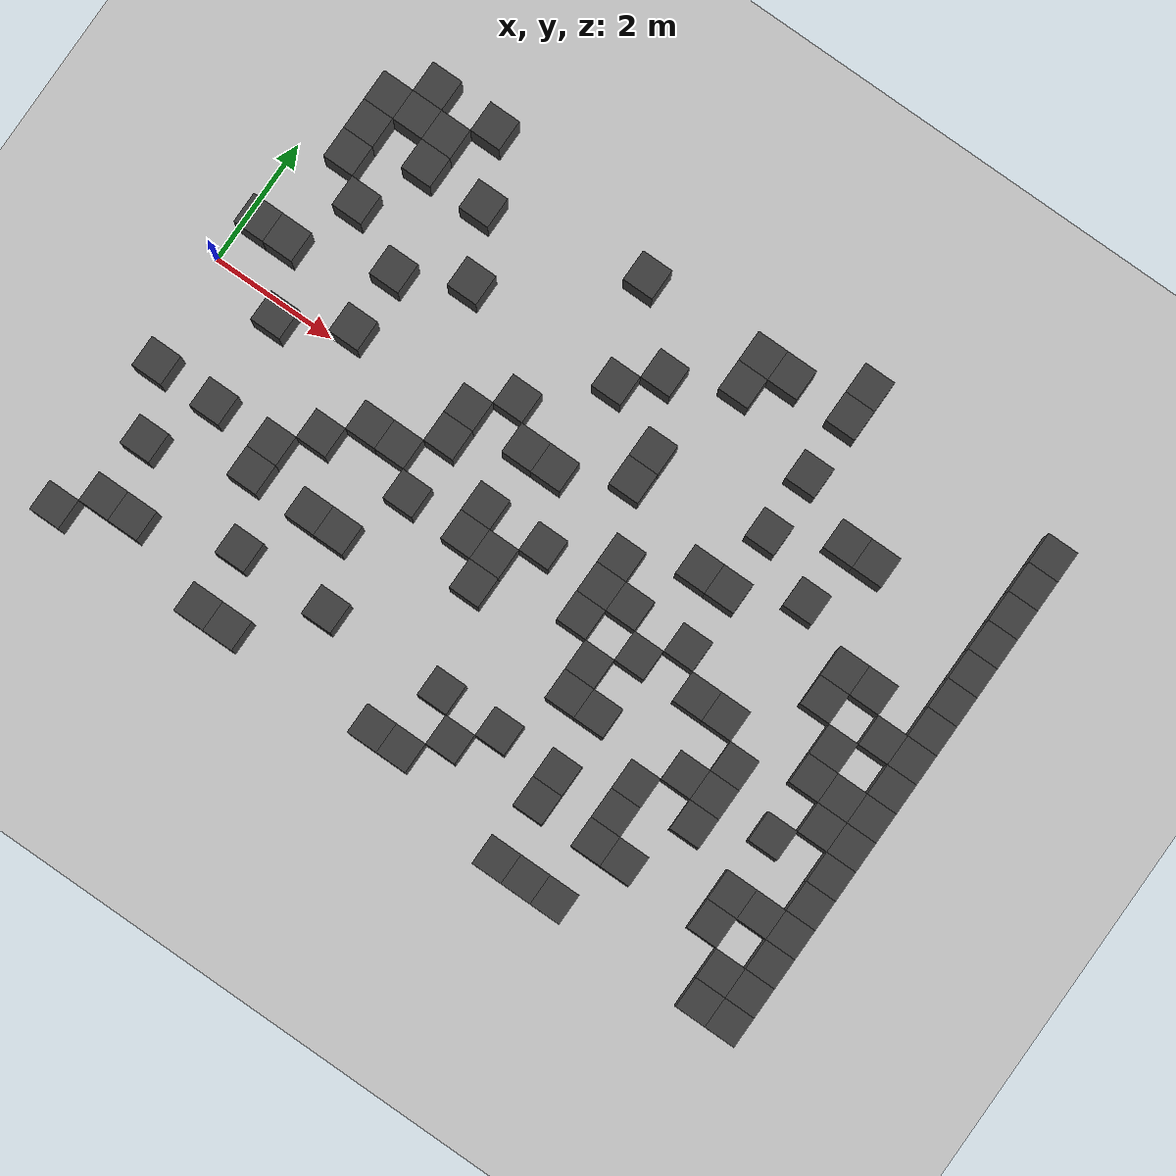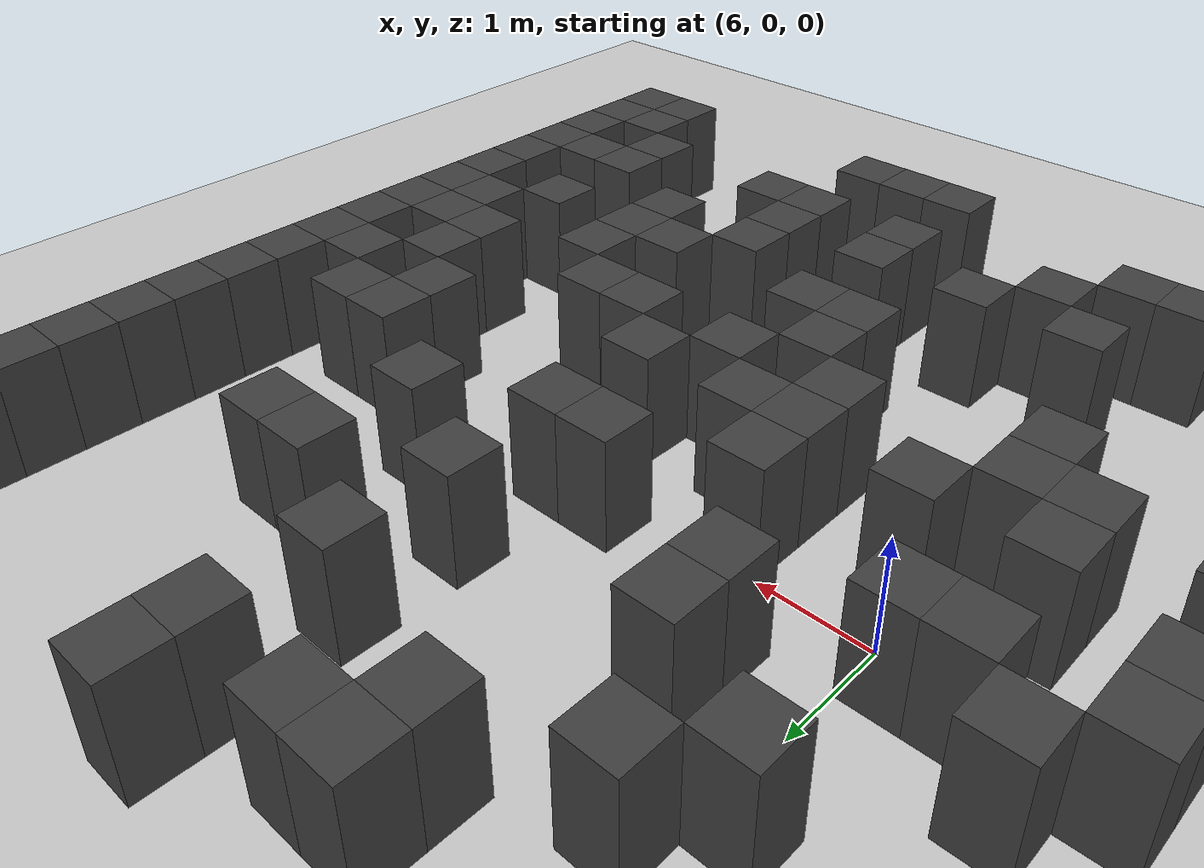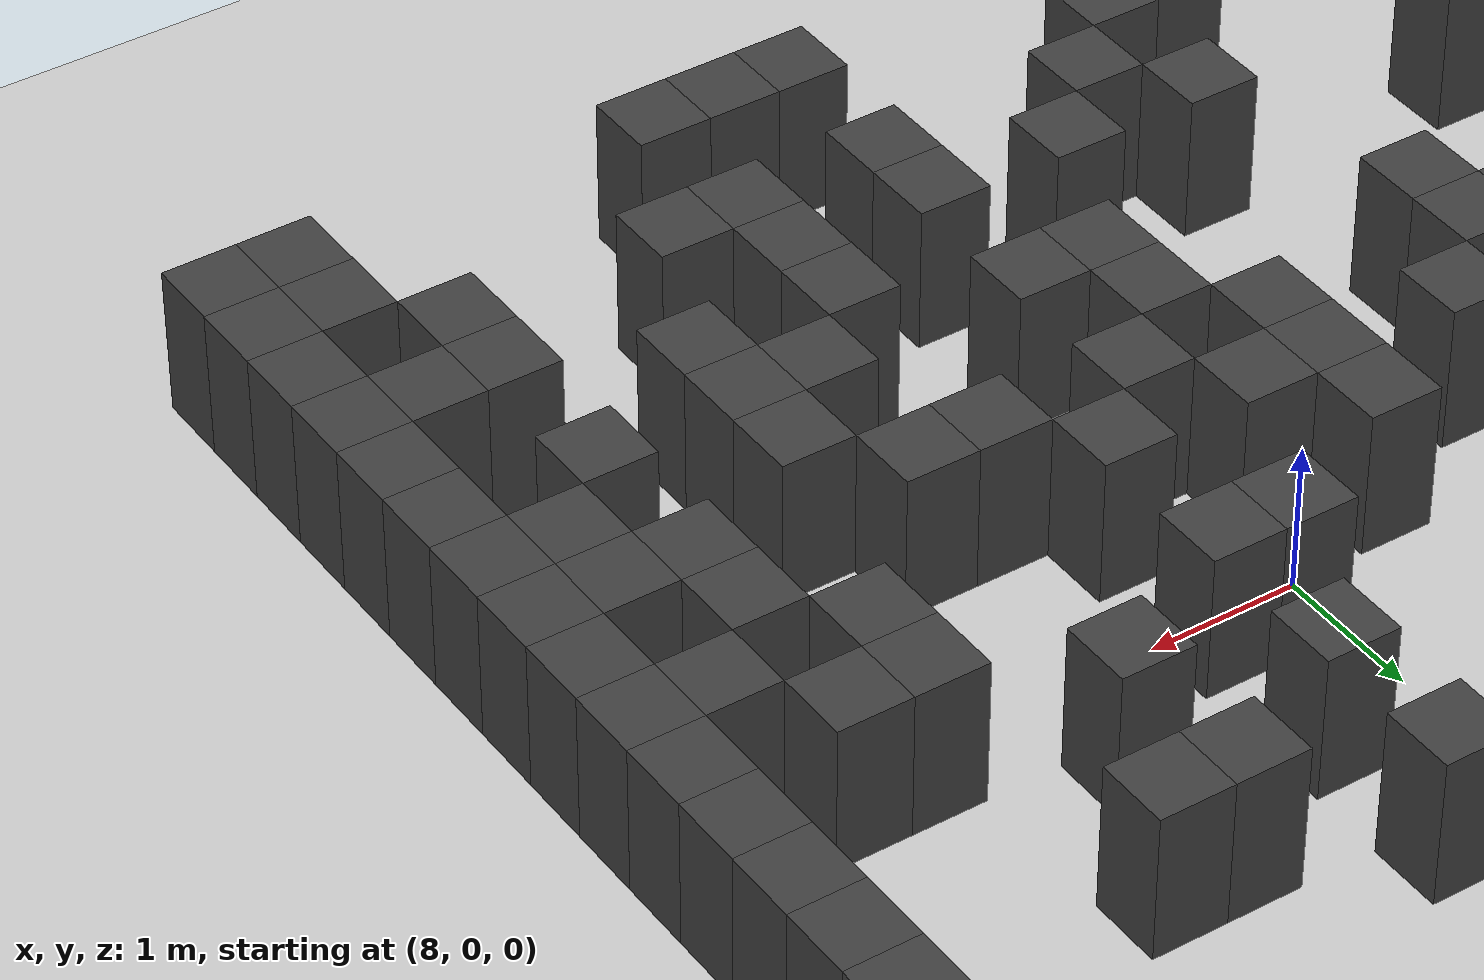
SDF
<sdf version="1.7">
 <world name="map_4822">
  <model name="ground_plane">
   <static>true</static>
   <link name="link">
    <collision name="collision">
     <geometry><plane><normal>0 0 1</normal><size>200 200</size></plane></geometry>
    </collision>
    <visual name="visual">
     <geometry><plane><normal>0 0 1</normal><size>200 200</size></plane></geometry>
     <material><ambient>0.8 0.8 0.8 1</ambient><diffuse>0.8 0.8 0.8 1</diffuse></material>
    </visual>
   </link>
  </model>
  <model name="maze_environment">
   <static>true</static>
   <link name="wall_263">
    <pose>1.250 3.750 0.500 0 0 0</pose>
    <collision name="col"><geometry><box><size>0.5 0.5 1.0</size></box></geometry></collision>
    <visual name="vis">
     <geometry><box><size>0.5 0.5 1.0</size></box></geometry>
     <material><ambient>0.15 0.15 0.15 1</ambient><diffuse>0.25 0.25 0.25 1</diffuse></material>
    </visual>
   </link>
   <link name="wall_264">
    <pose>2.250 3.750 0.500 0 0 0</pose>
    <collision name="col"><geometry><box><size>0.5 0.5 1.0</size></box></geometry></collision>
    <visual name="vis">
     <geometry><box><size>0.5 0.5 1.0</size></box></geometry>
     <material><ambient>0.15 0.15 0.15 1</ambient><diffuse>0.25 0.25 0.25 1</diffuse></material>
    </visual>
   </link>
   <link name="wall_265">
    <pose>8.750 3.750 0.500 0 0 0</pose>
    <collision name="col"><geometry><box><size>0.5 0.5 1.0</size></box></geometry></collision>
    <visual name="vis">
     <geometry><box><size>0.5 0.5 1.0</size></box></geometry>
     <material><ambient>0.15 0.15 0.15 1</ambient><diffuse>0.25 0.25 0.25 1</diffuse></material>
    </visual>
   </link>
   <link name="wall_278">
    <pose>0.750 3.250 0.500 0 0 0</pose>
    <collision name="col"><geometry><box><size>0.5 0.5 1.0</size></box></geometry></collision>
    <visual name="vis">
     <geometry><box><size>0.5 0.5 1.0</size></box></geometry>
     <material><ambient>0.15 0.15 0.15 1</ambient><diffuse>0.25 0.25 0.25 1</diffuse></material>
    </visual>
   </link>
   <link name="wall_279">
    <pose>1.250 3.250 0.500 0 0 0</pose>
    <collision name="col"><geometry><box><size>0.5 0.5 1.0</size></box></geometry></collision>
    <visual name="vis">
     <geometry><box><size>0.5 0.5 1.0</size></box></geometry>
     <material><ambient>0.15 0.15 0.15 1</ambient><diffuse>0.25 0.25 0.25 1</diffuse></material>
    </visual>
   </link>
   <link name="wall_280">
    <pose>1.750 3.250 0.500 0 0 0</pose>
    <collision name="col"><geometry><box><size>0.5 0.5 1.0</size></box></geometry></collision>
    <visual name="vis">
     <geometry><box><size>0.5 0.5 1.0</size></box></geometry>
     <material><ambient>0.15 0.15 0.15 1</ambient><diffuse>0.25 0.25 0.25 1</diffuse></material>
    </visual>
   </link>
   <link name="wall_281">
    <pose>5.250 3.250 0.500 0 0 0</pose>
    <collision name="col"><geometry><box><size>0.5 0.5 1.0</size></box></geometry></collision>
    <visual name="vis">
     <geometry><box><size>0.5 0.5 1.0</size></box></geometry>
     <material><ambient>0.15 0.15 0.15 1</ambient><diffuse>0.25 0.25 0.25 1</diffuse></material>
    </visual>
   </link>
   <link name="wall_282">
    <pose>7.250 3.250 0.500 0 0 0</pose>
    <collision name="col"><geometry><box><size>0.5 0.5 1.0</size></box></geometry></collision>
    <visual name="vis">
     <geometry><box><size>0.5 0.5 1.0</size></box></geometry>
     <material><ambient>0.15 0.15 0.15 1</ambient><diffuse>0.25 0.25 0.25 1</diffuse></material>
    </visual>
   </link>
   <link name="wall_283">
    <pose>7.750 3.250 0.500 0 0 0</pose>
    <collision name="col"><geometry><box><size>0.5 0.5 1.0</size></box></geometry></collision>
    <visual name="vis">
     <geometry><box><size>0.5 0.5 1.0</size></box></geometry>
     <material><ambient>0.15 0.15 0.15 1</ambient><diffuse>0.25 0.25 0.25 1</diffuse></material>
    </visual>
   </link>
   <link name="wall_284">
    <pose>8.750 3.250 0.500 0 0 0</pose>
    <collision name="col"><geometry><box><size>0.5 0.5 1.0</size></box></geometry></collision>
    <visual name="vis">
     <geometry><box><size>0.5 0.5 1.0</size></box></geometry>
     <material><ambient>0.15 0.15 0.15 1</ambient><diffuse>0.25 0.25 0.25 1</diffuse></material>
    </visual>
   </link>
   <link name="wall_285">
    <pose>12.250 3.250 0.500 0 0 0</pose>
    <collision name="col"><geometry><box><size>0.5 0.5 1.0</size></box></geometry></collision>
    <visual name="vis">
     <geometry><box><size>0.5 0.5 1.0</size></box></geometry>
     <material><ambient>0.15 0.15 0.15 1</ambient><diffuse>0.25 0.25 0.25 1</diffuse></material>
    </visual>
   </link>
   <link name="wall_292">
    <pose>0.750 2.750 0.500 0 0 0</pose>
    <collision name="col"><geometry><box><size>0.5 0.5 1.0</size></box></geometry></collision>
    <visual name="vis">
     <geometry><box><size>0.5 0.5 1.0</size></box></geometry>
     <material><ambient>0.15 0.15 0.15 1</ambient><diffuse>0.25 0.25 0.25 1</diffuse></material>
    </visual>
   </link>
   <link name="wall_293">
    <pose>1.750 2.750 0.500 0 0 0</pose>
    <collision name="col"><geometry><box><size>0.5 0.5 1.0</size></box></geometry></collision>
    <visual name="vis">
     <geometry><box><size>0.5 0.5 1.0</size></box></geometry>
     <material><ambient>0.15 0.15 0.15 1</ambient><diffuse>0.25 0.25 0.25 1</diffuse></material>
    </visual>
   </link>
   <link name="wall_294">
    <pose>2.750 2.750 0.500 0 0 0</pose>
    <collision name="col"><geometry><box><size>0.5 0.5 1.0</size></box></geometry></collision>
    <visual name="vis">
     <geometry><box><size>0.5 0.5 1.0</size></box></geometry>
     <material><ambient>0.15 0.15 0.15 1</ambient><diffuse>0.25 0.25 0.25 1</diffuse></material>
    </visual>
   </link>
   <link name="wall_295">
    <pose>7.250 2.750 0.500 0 0 0</pose>
    <collision name="col"><geometry><box><size>0.5 0.5 1.0</size></box></geometry></collision>
    <visual name="vis">
     <geometry><box><size>0.5 0.5 1.0</size></box></geometry>
     <material><ambient>0.15 0.15 0.15 1</ambient><diffuse>0.25 0.25 0.25 1</diffuse></material>
    </visual>
   </link>
   <link name="wall_296">
    <pose>12.250 2.750 0.500 0 0 0</pose>
    <collision name="col"><geometry><box><size>0.5 0.5 1.0</size></box></geometry></collision>
    <visual name="vis">
     <geometry><box><size>0.5 0.5 1.0</size></box></geometry>
     <material><ambient>0.15 0.15 0.15 1</ambient><diffuse>0.25 0.25 0.25 1</diffuse></material>
    </visual>
   </link>
   <link name="wall_301">
    <pose>0.750 2.250 0.500 0 0 0</pose>
    <collision name="col"><geometry><box><size>0.5 0.5 1.0</size></box></geometry></collision>
    <visual name="vis">
     <geometry><box><size>0.5 0.5 1.0</size></box></geometry>
     <material><ambient>0.15 0.15 0.15 1</ambient><diffuse>0.25 0.25 0.25 1</diffuse></material>
    </visual>
   </link>
   <link name="wall_302">
    <pose>6.250 2.250 0.500 0 0 0</pose>
    <collision name="col"><geometry><box><size>0.5 0.5 1.0</size></box></geometry></collision>
    <visual name="vis">
     <geometry><box><size>0.5 0.5 1.0</size></box></geometry>
     <material><ambient>0.15 0.15 0.15 1</ambient><diffuse>0.25 0.25 0.25 1</diffuse></material>
    </visual>
   </link>
   <link name="wall_303">
    <pose>8.750 2.250 0.500 0 0 0</pose>
    <collision name="col"><geometry><box><size>0.5 0.5 1.0</size></box></geometry></collision>
    <visual name="vis">
     <geometry><box><size>0.5 0.5 1.0</size></box></geometry>
     <material><ambient>0.15 0.15 0.15 1</ambient><diffuse>0.25 0.25 0.25 1</diffuse></material>
    </visual>
   </link>
   <link name="wall_304">
    <pose>12.250 2.250 0.500 0 0 0</pose>
    <collision name="col"><geometry><box><size>0.5 0.5 1.0</size></box></geometry></collision>
    <visual name="vis">
     <geometry><box><size>0.5 0.5 1.0</size></box></geometry>
     <material><ambient>0.15 0.15 0.15 1</ambient><diffuse>0.25 0.25 0.25 1</diffuse></material>
    </visual>
   </link>
   <link name="wall_308">
    <pose>1.250 1.750 0.500 0 0 0</pose>
    <collision name="col"><geometry><box><size>0.5 0.5 1.0</size></box></geometry></collision>
    <visual name="vis">
     <geometry><box><size>0.5 0.5 1.0</size></box></geometry>
     <material><ambient>0.15 0.15 0.15 1</ambient><diffuse>0.25 0.25 0.25 1</diffuse></material>
    </visual>
   </link>
   <link name="wall_309">
    <pose>3.250 1.750 0.500 0 0 0</pose>
    <collision name="col"><geometry><box><size>0.5 0.5 1.0</size></box></geometry></collision>
    <visual name="vis">
     <geometry><box><size>0.5 0.5 1.0</size></box></geometry>
     <material><ambient>0.15 0.15 0.15 1</ambient><diffuse>0.25 0.25 0.25 1</diffuse></material>
    </visual>
   </link>
   <link name="wall_310">
    <pose>5.750 1.750 0.500 0 0 0</pose>
    <collision name="col"><geometry><box><size>0.5 0.5 1.0</size></box></geometry></collision>
    <visual name="vis">
     <geometry><box><size>0.5 0.5 1.0</size></box></geometry>
     <material><ambient>0.15 0.15 0.15 1</ambient><diffuse>0.25 0.25 0.25 1</diffuse></material>
    </visual>
   </link>
   <link name="wall_311">
    <pose>9.750 1.750 0.500 0 0 0</pose>
    <collision name="col"><geometry><box><size>0.5 0.5 1.0</size></box></geometry></collision>
    <visual name="vis">
     <geometry><box><size>0.5 0.5 1.0</size></box></geometry>
     <material><ambient>0.15 0.15 0.15 1</ambient><diffuse>0.25 0.25 0.25 1</diffuse></material>
    </visual>
   </link>
   <link name="wall_312">
    <pose>10.250 1.750 0.500 0 0 0</pose>
    <collision name="col"><geometry><box><size>0.5 0.5 1.0</size></box></geometry></collision>
    <visual name="vis">
     <geometry><box><size>0.5 0.5 1.0</size></box></geometry>
     <material><ambient>0.15 0.15 0.15 1</ambient><diffuse>0.25 0.25 0.25 1</diffuse></material>
    </visual>
   </link>
   <link name="wall_313">
    <pose>12.250 1.750 0.500 0 0 0</pose>
    <collision name="col"><geometry><box><size>0.5 0.5 1.0</size></box></geometry></collision>
    <visual name="vis">
     <geometry><box><size>0.5 0.5 1.0</size></box></geometry>
     <material><ambient>0.15 0.15 0.15 1</ambient><diffuse>0.25 0.25 0.25 1</diffuse></material>
    </visual>
   </link>
   <link name="wall_320">
    <pose>2.250 1.250 0.500 0 0 0</pose>
    <collision name="col"><geometry><box><size>0.5 0.5 1.0</size></box></geometry></collision>
    <visual name="vis">
     <geometry><box><size>0.5 0.5 1.0</size></box></geometry>
     <material><ambient>0.15 0.15 0.15 1</ambient><diffuse>0.25 0.25 0.25 1</diffuse></material>
    </visual>
   </link>
   <link name="wall_321">
    <pose>6.750 1.250 0.500 0 0 0</pose>
    <collision name="col"><geometry><box><size>0.5 0.5 1.0</size></box></geometry></collision>
    <visual name="vis">
     <geometry><box><size>0.5 0.5 1.0</size></box></geometry>
     <material><ambient>0.15 0.15 0.15 1</ambient><diffuse>0.25 0.25 0.25 1</diffuse></material>
    </visual>
   </link>
   <link name="wall_322">
    <pose>8.750 1.250 0.500 0 0 0</pose>
    <collision name="col"><geometry><box><size>0.5 0.5 1.0</size></box></geometry></collision>
    <visual name="vis">
     <geometry><box><size>0.5 0.5 1.0</size></box></geometry>
     <material><ambient>0.15 0.15 0.15 1</ambient><diffuse>0.25 0.25 0.25 1</diffuse></material>
    </visual>
   </link>
   <link name="wall_323">
    <pose>12.250 1.250 0.500 0 0 0</pose>
    <collision name="col"><geometry><box><size>0.5 0.5 1.0</size></box></geometry></collision>
    <visual name="vis">
     <geometry><box><size>0.5 0.5 1.0</size></box></geometry>
     <material><ambient>0.15 0.15 0.15 1</ambient><diffuse>0.25 0.25 0.25 1</diffuse></material>
    </visual>
   </link>
   <link name="wall_331">
    <pose>0.250 0.750 0.500 0 0 0</pose>
    <collision name="col"><geometry><box><size>0.5 0.5 1.0</size></box></geometry></collision>
    <visual name="vis">
     <geometry><box><size>0.5 0.5 1.0</size></box></geometry>
     <material><ambient>0.15 0.15 0.15 1</ambient><diffuse>0.25 0.25 0.25 1</diffuse></material>
    </visual>
   </link>
   <link name="wall_332">
    <pose>0.750 0.750 0.500 0 0 0</pose>
    <collision name="col"><geometry><box><size>0.5 0.5 1.0</size></box></geometry></collision>
    <visual name="vis">
     <geometry><box><size>0.5 0.5 1.0</size></box></geometry>
     <material><ambient>0.15 0.15 0.15 1</ambient><diffuse>0.25 0.25 0.25 1</diffuse></material>
    </visual>
   </link>
   <link name="wall_333">
    <pose>4.750 0.750 0.500 0 0 0</pose>
    <collision name="col"><geometry><box><size>0.5 0.5 1.0</size></box></geometry></collision>
    <visual name="vis">
     <geometry><box><size>0.5 0.5 1.0</size></box></geometry>
     <material><ambient>0.15 0.15 0.15 1</ambient><diffuse>0.25 0.25 0.25 1</diffuse></material>
    </visual>
   </link>
   <link name="wall_334">
    <pose>6.750 0.750 0.500 0 0 0</pose>
    <collision name="col"><geometry><box><size>0.5 0.5 1.0</size></box></geometry></collision>
    <visual name="vis">
     <geometry><box><size>0.5 0.5 1.0</size></box></geometry>
     <material><ambient>0.15 0.15 0.15 1</ambient><diffuse>0.25 0.25 0.25 1</diffuse></material>
    </visual>
   </link>
   <link name="wall_335">
    <pose>9.750 0.750 0.500 0 0 0</pose>
    <collision name="col"><geometry><box><size>0.5 0.5 1.0</size></box></geometry></collision>
    <visual name="vis">
     <geometry><box><size>0.5 0.5 1.0</size></box></geometry>
     <material><ambient>0.15 0.15 0.15 1</ambient><diffuse>0.25 0.25 0.25 1</diffuse></material>
    </visual>
   </link>
   <link name="wall_336">
    <pose>12.250 0.750 0.500 0 0 0</pose>
    <collision name="col"><geometry><box><size>0.5 0.5 1.0</size></box></geometry></collision>
    <visual name="vis">
     <geometry><box><size>0.5 0.5 1.0</size></box></geometry>
     <material><ambient>0.15 0.15 0.15 1</ambient><diffuse>0.25 0.25 0.25 1</diffuse></material>
    </visual>
   </link>
   <link name="wall_342">
    <pose>2.250 0.250 0.500 0 0 0</pose>
    <collision name="col"><geometry><box><size>0.5 0.5 1.0</size></box></geometry></collision>
    <visual name="vis">
     <geometry><box><size>0.5 0.5 1.0</size></box></geometry>
     <material><ambient>0.15 0.15 0.15 1</ambient><diffuse>0.25 0.25 0.25 1</diffuse></material>
    </visual>
   </link>
   <link name="wall_343">
    <pose>4.250 0.250 0.500 0 0 0</pose>
    <collision name="col"><geometry><box><size>0.5 0.5 1.0</size></box></geometry></collision>
    <visual name="vis">
     <geometry><box><size>0.5 0.5 1.0</size></box></geometry>
     <material><ambient>0.15 0.15 0.15 1</ambient><diffuse>0.25 0.25 0.25 1</diffuse></material>
    </visual>
   </link>
   <link name="wall_344">
    <pose>5.250 0.250 0.500 0 0 0</pose>
    <collision name="col"><geometry><box><size>0.5 0.5 1.0</size></box></geometry></collision>
    <visual name="vis">
     <geometry><box><size>0.5 0.5 1.0</size></box></geometry>
     <material><ambient>0.15 0.15 0.15 1</ambient><diffuse>0.25 0.25 0.25 1</diffuse></material>
    </visual>
   </link>
   <link name="wall_345">
    <pose>5.750 0.250 0.500 0 0 0</pose>
    <collision name="col"><geometry><box><size>0.5 0.5 1.0</size></box></geometry></collision>
    <visual name="vis">
     <geometry><box><size>0.5 0.5 1.0</size></box></geometry>
     <material><ambient>0.15 0.15 0.15 1</ambient><diffuse>0.25 0.25 0.25 1</diffuse></material>
    </visual>
   </link>
   <link name="wall_346">
    <pose>8.250 0.250 0.500 0 0 0</pose>
    <collision name="col"><geometry><box><size>0.5 0.5 1.0</size></box></geometry></collision>
    <visual name="vis">
     <geometry><box><size>0.5 0.5 1.0</size></box></geometry>
     <material><ambient>0.15 0.15 0.15 1</ambient><diffuse>0.25 0.25 0.25 1</diffuse></material>
    </visual>
   </link>
   <link name="wall_347">
    <pose>8.750 0.250 0.500 0 0 0</pose>
    <collision name="col"><geometry><box><size>0.5 0.5 1.0</size></box></geometry></collision>
    <visual name="vis">
     <geometry><box><size>0.5 0.5 1.0</size></box></geometry>
     <material><ambient>0.15 0.15 0.15 1</ambient><diffuse>0.25 0.25 0.25 1</diffuse></material>
    </visual>
   </link>
   <link name="wall_348">
    <pose>10.750 0.250 0.500 0 0 0</pose>
    <collision name="col"><geometry><box><size>0.5 0.5 1.0</size></box></geometry></collision>
    <visual name="vis">
     <geometry><box><size>0.5 0.5 1.0</size></box></geometry>
     <material><ambient>0.15 0.15 0.15 1</ambient><diffuse>0.25 0.25 0.25 1</diffuse></material>
    </visual>
   </link>
   <link name="wall_349">
    <pose>11.250 0.250 0.500 0 0 0</pose>
    <collision name="col"><geometry><box><size>0.5 0.5 1.0</size></box></geometry></collision>
    <visual name="vis">
     <geometry><box><size>0.5 0.5 1.0</size></box></geometry>
     <material><ambient>0.15 0.15 0.15 1</ambient><diffuse>0.25 0.25 0.25 1</diffuse></material>
    </visual>
   </link>
   <link name="wall_350">
    <pose>12.250 0.250 0.500 0 0 0</pose>
    <collision name="col"><geometry><box><size>0.5 0.5 1.0</size></box></geometry></collision>
    <visual name="vis">
     <geometry><box><size>0.5 0.5 1.0</size></box></geometry>
     <material><ambient>0.15 0.15 0.15 1</ambient><diffuse>0.25 0.25 0.25 1</diffuse></material>
    </visual>
   </link>
   <link name="wall_357">
    <pose>1.250 -0.250 0.500 0 0 0</pose>
    <collision name="col"><geometry><box><size>0.5 0.5 1.0</size></box></geometry></collision>
    <visual name="vis">
     <geometry><box><size>0.5 0.5 1.0</size></box></geometry>
     <material><ambient>0.15 0.15 0.15 1</ambient><diffuse>0.25 0.25 0.25 1</diffuse></material>
    </visual>
   </link>
   <link name="wall_358">
    <pose>4.250 -0.250 0.500 0 0 0</pose>
    <collision name="col"><geometry><box><size>0.5 0.5 1.0</size></box></geometry></collision>
    <visual name="vis">
     <geometry><box><size>0.5 0.5 1.0</size></box></geometry>
     <material><ambient>0.15 0.15 0.15 1</ambient><diffuse>0.25 0.25 0.25 1</diffuse></material>
    </visual>
   </link>
   <link name="wall_359">
    <pose>7.250 -0.250 0.500 0 0 0</pose>
    <collision name="col"><geometry><box><size>0.5 0.5 1.0</size></box></geometry></collision>
    <visual name="vis">
     <geometry><box><size>0.5 0.5 1.0</size></box></geometry>
     <material><ambient>0.15 0.15 0.15 1</ambient><diffuse>0.25 0.25 0.25 1</diffuse></material>
    </visual>
   </link>
   <link name="wall_360">
    <pose>10.750 -0.250 0.500 0 0 0</pose>
    <collision name="col"><geometry><box><size>0.5 0.5 1.0</size></box></geometry></collision>
    <visual name="vis">
     <geometry><box><size>0.5 0.5 1.0</size></box></geometry>
     <material><ambient>0.15 0.15 0.15 1</ambient><diffuse>0.25 0.25 0.25 1</diffuse></material>
    </visual>
   </link>
   <link name="wall_361">
    <pose>11.750 -0.250 0.500 0 0 0</pose>
    <collision name="col"><geometry><box><size>0.5 0.5 1.0</size></box></geometry></collision>
    <visual name="vis">
     <geometry><box><size>0.5 0.5 1.0</size></box></geometry>
     <material><ambient>0.15 0.15 0.15 1</ambient><diffuse>0.25 0.25 0.25 1</diffuse></material>
    </visual>
   </link>
   <link name="wall_362">
    <pose>12.250 -0.250 0.500 0 0 0</pose>
    <collision name="col"><geometry><box><size>0.5 0.5 1.0</size></box></geometry></collision>
    <visual name="vis">
     <geometry><box><size>0.5 0.5 1.0</size></box></geometry>
     <material><ambient>0.15 0.15 0.15 1</ambient><diffuse>0.25 0.25 0.25 1</diffuse></material>
    </visual>
   </link>
   <link name="wall_368">
    <pose>3.250 -0.750 0.500 0 0 0</pose>
    <collision name="col"><geometry><box><size>0.5 0.5 1.0</size></box></geometry></collision>
    <visual name="vis">
     <geometry><box><size>0.5 0.5 1.0</size></box></geometry>
     <material><ambient>0.15 0.15 0.15 1</ambient><diffuse>0.25 0.25 0.25 1</diffuse></material>
    </visual>
   </link>
   <link name="wall_369">
    <pose>3.750 -0.750 0.500 0 0 0</pose>
    <collision name="col"><geometry><box><size>0.5 0.5 1.0</size></box></geometry></collision>
    <visual name="vis">
     <geometry><box><size>0.5 0.5 1.0</size></box></geometry>
     <material><ambient>0.15 0.15 0.15 1</ambient><diffuse>0.25 0.25 0.25 1</diffuse></material>
    </visual>
   </link>
   <link name="wall_370">
    <pose>5.250 -0.750 0.500 0 0 0</pose>
    <collision name="col"><geometry><box><size>0.5 0.5 1.0</size></box></geometry></collision>
    <visual name="vis">
     <geometry><box><size>0.5 0.5 1.0</size></box></geometry>
     <material><ambient>0.15 0.15 0.15 1</ambient><diffuse>0.25 0.25 0.25 1</diffuse></material>
    </visual>
   </link>
   <link name="wall_371">
    <pose>6.250 -0.750 0.500 0 0 0</pose>
    <collision name="col"><geometry><box><size>0.5 0.5 1.0</size></box></geometry></collision>
    <visual name="vis">
     <geometry><box><size>0.5 0.5 1.0</size></box></geometry>
     <material><ambient>0.15 0.15 0.15 1</ambient><diffuse>0.25 0.25 0.25 1</diffuse></material>
    </visual>
   </link>
   <link name="wall_372">
    <pose>7.250 -0.750 0.500 0 0 0</pose>
    <collision name="col"><geometry><box><size>0.5 0.5 1.0</size></box></geometry></collision>
    <visual name="vis">
     <geometry><box><size>0.5 0.5 1.0</size></box></geometry>
     <material><ambient>0.15 0.15 0.15 1</ambient><diffuse>0.25 0.25 0.25 1</diffuse></material>
    </visual>
   </link>
   <link name="wall_373">
    <pose>7.750 -0.750 0.500 0 0 0</pose>
    <collision name="col"><geometry><box><size>0.5 0.5 1.0</size></box></geometry></collision>
    <visual name="vis">
     <geometry><box><size>0.5 0.5 1.0</size></box></geometry>
     <material><ambient>0.15 0.15 0.15 1</ambient><diffuse>0.25 0.25 0.25 1</diffuse></material>
    </visual>
   </link>
   <link name="wall_374">
    <pose>8.750 -0.750 0.500 0 0 0</pose>
    <collision name="col"><geometry><box><size>0.5 0.5 1.0</size></box></geometry></collision>
    <visual name="vis">
     <geometry><box><size>0.5 0.5 1.0</size></box></geometry>
     <material><ambient>0.15 0.15 0.15 1</ambient><diffuse>0.25 0.25 0.25 1</diffuse></material>
    </visual>
   </link>
   <link name="wall_375">
    <pose>11.250 -0.750 0.500 0 0 0</pose>
    <collision name="col"><geometry><box><size>0.5 0.5 1.0</size></box></geometry></collision>
    <visual name="vis">
     <geometry><box><size>0.5 0.5 1.0</size></box></geometry>
     <material><ambient>0.15 0.15 0.15 1</ambient><diffuse>0.25 0.25 0.25 1</diffuse></material>
    </visual>
   </link>
   <link name="wall_376">
    <pose>12.250 -0.750 0.500 0 0 0</pose>
    <collision name="col"><geometry><box><size>0.5 0.5 1.0</size></box></geometry></collision>
    <visual name="vis">
     <geometry><box><size>0.5 0.5 1.0</size></box></geometry>
     <material><ambient>0.15 0.15 0.15 1</ambient><diffuse>0.25 0.25 0.25 1</diffuse></material>
    </visual>
   </link>
   <link name="wall_383">
    <pose>2.750 -1.250 0.500 0 0 0</pose>
    <collision name="col"><geometry><box><size>0.5 0.5 1.0</size></box></geometry></collision>
    <visual name="vis">
     <geometry><box><size>0.5 0.5 1.0</size></box></geometry>
     <material><ambient>0.15 0.15 0.15 1</ambient><diffuse>0.25 0.25 0.25 1</diffuse></material>
    </visual>
   </link>
   <link name="wall_384">
    <pose>4.250 -1.250 0.500 0 0 0</pose>
    <collision name="col"><geometry><box><size>0.5 0.5 1.0</size></box></geometry></collision>
    <visual name="vis">
     <geometry><box><size>0.5 0.5 1.0</size></box></geometry>
     <material><ambient>0.15 0.15 0.15 1</ambient><diffuse>0.25 0.25 0.25 1</diffuse></material>
    </visual>
   </link>
   <link name="wall_385">
    <pose>5.250 -1.250 0.500 0 0 0</pose>
    <collision name="col"><geometry><box><size>0.5 0.5 1.0</size></box></geometry></collision>
    <visual name="vis">
     <geometry><box><size>0.5 0.5 1.0</size></box></geometry>
     <material><ambient>0.15 0.15 0.15 1</ambient><diffuse>0.25 0.25 0.25 1</diffuse></material>
    </visual>
   </link>
   <link name="wall_386">
    <pose>5.750 -1.250 0.500 0 0 0</pose>
    <collision name="col"><geometry><box><size>0.5 0.5 1.0</size></box></geometry></collision>
    <visual name="vis">
     <geometry><box><size>0.5 0.5 1.0</size></box></geometry>
     <material><ambient>0.15 0.15 0.15 1</ambient><diffuse>0.25 0.25 0.25 1</diffuse></material>
    </visual>
   </link>
   <link name="wall_387">
    <pose>7.250 -1.250 0.500 0 0 0</pose>
    <collision name="col"><geometry><box><size>0.5 0.5 1.0</size></box></geometry></collision>
    <visual name="vis">
     <geometry><box><size>0.5 0.5 1.0</size></box></geometry>
     <material><ambient>0.15 0.15 0.15 1</ambient><diffuse>0.25 0.25 0.25 1</diffuse></material>
    </visual>
   </link>
   <link name="wall_388">
    <pose>8.250 -1.250 0.500 0 0 0</pose>
    <collision name="col"><geometry><box><size>0.5 0.5 1.0</size></box></geometry></collision>
    <visual name="vis">
     <geometry><box><size>0.5 0.5 1.0</size></box></geometry>
     <material><ambient>0.15 0.15 0.15 1</ambient><diffuse>0.25 0.25 0.25 1</diffuse></material>
    </visual>
   </link>
   <link name="wall_389">
    <pose>9.250 -1.250 0.500 0 0 0</pose>
    <collision name="col"><geometry><box><size>0.5 0.5 1.0</size></box></geometry></collision>
    <visual name="vis">
     <geometry><box><size>0.5 0.5 1.0</size></box></geometry>
     <material><ambient>0.15 0.15 0.15 1</ambient><diffuse>0.25 0.25 0.25 1</diffuse></material>
    </visual>
   </link>
   <link name="wall_390">
    <pose>9.750 -1.250 0.500 0 0 0</pose>
    <collision name="col"><geometry><box><size>0.5 0.5 1.0</size></box></geometry></collision>
    <visual name="vis">
     <geometry><box><size>0.5 0.5 1.0</size></box></geometry>
     <material><ambient>0.15 0.15 0.15 1</ambient><diffuse>0.25 0.25 0.25 1</diffuse></material>
    </visual>
   </link>
   <link name="wall_391">
    <pose>11.250 -1.250 0.500 0 0 0</pose>
    <collision name="col"><geometry><box><size>0.5 0.5 1.0</size></box></geometry></collision>
    <visual name="vis">
     <geometry><box><size>0.5 0.5 1.0</size></box></geometry>
     <material><ambient>0.15 0.15 0.15 1</ambient><diffuse>0.25 0.25 0.25 1</diffuse></material>
    </visual>
   </link>
   <link name="wall_392">
    <pose>11.750 -1.250 0.500 0 0 0</pose>
    <collision name="col"><geometry><box><size>0.5 0.5 1.0</size></box></geometry></collision>
    <visual name="vis">
     <geometry><box><size>0.5 0.5 1.0</size></box></geometry>
     <material><ambient>0.15 0.15 0.15 1</ambient><diffuse>0.25 0.25 0.25 1</diffuse></material>
    </visual>
   </link>
   <link name="wall_393">
    <pose>12.250 -1.250 0.500 0 0 0</pose>
    <collision name="col"><geometry><box><size>0.5 0.5 1.0</size></box></geometry></collision>
    <visual name="vis">
     <geometry><box><size>0.5 0.5 1.0</size></box></geometry>
     <material><ambient>0.15 0.15 0.15 1</ambient><diffuse>0.25 0.25 0.25 1</diffuse></material>
    </visual>
   </link>
   <link name="wall_398">
    <pose>0.250 -1.750 0.500 0 0 0</pose>
    <collision name="col"><geometry><box><size>0.5 0.5 1.0</size></box></geometry></collision>
    <visual name="vis">
     <geometry><box><size>0.5 0.5 1.0</size></box></geometry>
     <material><ambient>0.15 0.15 0.15 1</ambient><diffuse>0.25 0.25 0.25 1</diffuse></material>
    </visual>
   </link>
   <link name="wall_399">
    <pose>1.250 -1.750 0.500 0 0 0</pose>
    <collision name="col"><geometry><box><size>0.5 0.5 1.0</size></box></geometry></collision>
    <visual name="vis">
     <geometry><box><size>0.5 0.5 1.0</size></box></geometry>
     <material><ambient>0.15 0.15 0.15 1</ambient><diffuse>0.25 0.25 0.25 1</diffuse></material>
    </visual>
   </link>
   <link name="wall_400">
    <pose>2.250 -1.750 0.500 0 0 0</pose>
    <collision name="col"><geometry><box><size>0.5 0.5 1.0</size></box></geometry></collision>
    <visual name="vis">
     <geometry><box><size>0.5 0.5 1.0</size></box></geometry>
     <material><ambient>0.15 0.15 0.15 1</ambient><diffuse>0.25 0.25 0.25 1</diffuse></material>
    </visual>
   </link>
   <link name="wall_401">
    <pose>5.750 -1.750 0.500 0 0 0</pose>
    <collision name="col"><geometry><box><size>0.5 0.5 1.0</size></box></geometry></collision>
    <visual name="vis">
     <geometry><box><size>0.5 0.5 1.0</size></box></geometry>
     <material><ambient>0.15 0.15 0.15 1</ambient><diffuse>0.25 0.25 0.25 1</diffuse></material>
    </visual>
   </link>
   <link name="wall_402">
    <pose>7.750 -1.750 0.500 0 0 0</pose>
    <collision name="col"><geometry><box><size>0.5 0.5 1.0</size></box></geometry></collision>
    <visual name="vis">
     <geometry><box><size>0.5 0.5 1.0</size></box></geometry>
     <material><ambient>0.15 0.15 0.15 1</ambient><diffuse>0.25 0.25 0.25 1</diffuse></material>
    </visual>
   </link>
   <link name="wall_403">
    <pose>10.250 -1.750 0.500 0 0 0</pose>
    <collision name="col"><geometry><box><size>0.5 0.5 1.0</size></box></geometry></collision>
    <visual name="vis">
     <geometry><box><size>0.5 0.5 1.0</size></box></geometry>
     <material><ambient>0.15 0.15 0.15 1</ambient><diffuse>0.25 0.25 0.25 1</diffuse></material>
    </visual>
   </link>
   <link name="wall_404">
    <pose>11.750 -1.750 0.500 0 0 0</pose>
    <collision name="col"><geometry><box><size>0.5 0.5 1.0</size></box></geometry></collision>
    <visual name="vis">
     <geometry><box><size>0.5 0.5 1.0</size></box></geometry>
     <material><ambient>0.15 0.15 0.15 1</ambient><diffuse>0.25 0.25 0.25 1</diffuse></material>
    </visual>
   </link>
   <link name="wall_405">
    <pose>12.250 -1.750 0.500 0 0 0</pose>
    <collision name="col"><geometry><box><size>0.5 0.5 1.0</size></box></geometry></collision>
    <visual name="vis">
     <geometry><box><size>0.5 0.5 1.0</size></box></geometry>
     <material><ambient>0.15 0.15 0.15 1</ambient><diffuse>0.25 0.25 0.25 1</diffuse></material>
    </visual>
   </link>
   <link name="wall_414">
    <pose>2.250 -2.250 0.500 0 0 0</pose>
    <collision name="col"><geometry><box><size>0.5 0.5 1.0</size></box></geometry></collision>
    <visual name="vis">
     <geometry><box><size>0.5 0.5 1.0</size></box></geometry>
     <material><ambient>0.15 0.15 0.15 1</ambient><diffuse>0.25 0.25 0.25 1</diffuse></material>
    </visual>
   </link>
   <link name="wall_415">
    <pose>3.250 -2.250 0.500 0 0 0</pose>
    <collision name="col"><geometry><box><size>0.5 0.5 1.0</size></box></geometry></collision>
    <visual name="vis">
     <geometry><box><size>0.5 0.5 1.0</size></box></geometry>
     <material><ambient>0.15 0.15 0.15 1</ambient><diffuse>0.25 0.25 0.25 1</diffuse></material>
    </visual>
   </link>
   <link name="wall_416">
    <pose>3.750 -2.250 0.500 0 0 0</pose>
    <collision name="col"><geometry><box><size>0.5 0.5 1.0</size></box></geometry></collision>
    <visual name="vis">
     <geometry><box><size>0.5 0.5 1.0</size></box></geometry>
     <material><ambient>0.15 0.15 0.15 1</ambient><diffuse>0.25 0.25 0.25 1</diffuse></material>
    </visual>
   </link>
   <link name="wall_417">
    <pose>7.750 -2.250 0.500 0 0 0</pose>
    <collision name="col"><geometry><box><size>0.5 0.5 1.0</size></box></geometry></collision>
    <visual name="vis">
     <geometry><box><size>0.5 0.5 1.0</size></box></geometry>
     <material><ambient>0.15 0.15 0.15 1</ambient><diffuse>0.25 0.25 0.25 1</diffuse></material>
    </visual>
   </link>
   <link name="wall_418">
    <pose>8.250 -2.250 0.500 0 0 0</pose>
    <collision name="col"><geometry><box><size>0.5 0.5 1.0</size></box></geometry></collision>
    <visual name="vis">
     <geometry><box><size>0.5 0.5 1.0</size></box></geometry>
     <material><ambient>0.15 0.15 0.15 1</ambient><diffuse>0.25 0.25 0.25 1</diffuse></material>
    </visual>
   </link>
   <link name="wall_419">
    <pose>9.750 -2.250 0.500 0 0 0</pose>
    <collision name="col"><geometry><box><size>0.5 0.5 1.0</size></box></geometry></collision>
    <visual name="vis">
     <geometry><box><size>0.5 0.5 1.0</size></box></geometry>
     <material><ambient>0.15 0.15 0.15 1</ambient><diffuse>0.25 0.25 0.25 1</diffuse></material>
    </visual>
   </link>
   <link name="wall_420">
    <pose>10.250 -2.250 0.500 0 0 0</pose>
    <collision name="col"><geometry><box><size>0.5 0.5 1.0</size></box></geometry></collision>
    <visual name="vis">
     <geometry><box><size>0.5 0.5 1.0</size></box></geometry>
     <material><ambient>0.15 0.15 0.15 1</ambient><diffuse>0.25 0.25 0.25 1</diffuse></material>
    </visual>
   </link>
   <link name="wall_421">
    <pose>11.250 -2.250 0.500 0 0 0</pose>
    <collision name="col"><geometry><box><size>0.5 0.5 1.0</size></box></geometry></collision>
    <visual name="vis">
     <geometry><box><size>0.5 0.5 1.0</size></box></geometry>
     <material><ambient>0.15 0.15 0.15 1</ambient><diffuse>0.25 0.25 0.25 1</diffuse></material>
    </visual>
   </link>
   <link name="wall_422">
    <pose>12.250 -2.250 0.500 0 0 0</pose>
    <collision name="col"><geometry><box><size>0.5 0.5 1.0</size></box></geometry></collision>
    <visual name="vis">
     <geometry><box><size>0.5 0.5 1.0</size></box></geometry>
     <material><ambient>0.15 0.15 0.15 1</ambient><diffuse>0.25 0.25 0.25 1</diffuse></material>
    </visual>
   </link>
   <link name="wall_432">
    <pose>0.750 -2.750 0.500 0 0 0</pose>
    <collision name="col"><geometry><box><size>0.5 0.5 1.0</size></box></geometry></collision>
    <visual name="vis">
     <geometry><box><size>0.5 0.5 1.0</size></box></geometry>
     <material><ambient>0.15 0.15 0.15 1</ambient><diffuse>0.25 0.25 0.25 1</diffuse></material>
    </visual>
   </link>
   <link name="wall_433">
    <pose>9.250 -2.750 0.500 0 0 0</pose>
    <collision name="col"><geometry><box><size>0.5 0.5 1.0</size></box></geometry></collision>
    <visual name="vis">
     <geometry><box><size>0.5 0.5 1.0</size></box></geometry>
     <material><ambient>0.15 0.15 0.15 1</ambient><diffuse>0.25 0.25 0.25 1</diffuse></material>
    </visual>
   </link>
   <link name="wall_434">
    <pose>10.250 -2.750 0.500 0 0 0</pose>
    <collision name="col"><geometry><box><size>0.5 0.5 1.0</size></box></geometry></collision>
    <visual name="vis">
     <geometry><box><size>0.5 0.5 1.0</size></box></geometry>
     <material><ambient>0.15 0.15 0.15 1</ambient><diffuse>0.25 0.25 0.25 1</diffuse></material>
    </visual>
   </link>
   <link name="wall_435">
    <pose>12.250 -2.750 0.500 0 0 0</pose>
    <collision name="col"><geometry><box><size>0.5 0.5 1.0</size></box></geometry></collision>
    <visual name="vis">
     <geometry><box><size>0.5 0.5 1.0</size></box></geometry>
     <material><ambient>0.15 0.15 0.15 1</ambient><diffuse>0.25 0.25 0.25 1</diffuse></material>
    </visual>
   </link>
   <link name="wall_441">
    <pose>2.750 -3.250 0.500 0 0 0</pose>
    <collision name="col"><geometry><box><size>0.5 0.5 1.0</size></box></geometry></collision>
    <visual name="vis">
     <geometry><box><size>0.5 0.5 1.0</size></box></geometry>
     <material><ambient>0.15 0.15 0.15 1</ambient><diffuse>0.25 0.25 0.25 1</diffuse></material>
    </visual>
   </link>
   <link name="wall_442">
    <pose>4.250 -3.250 0.500 0 0 0</pose>
    <collision name="col"><geometry><box><size>0.5 0.5 1.0</size></box></geometry></collision>
    <visual name="vis">
     <geometry><box><size>0.5 0.5 1.0</size></box></geometry>
     <material><ambient>0.15 0.15 0.15 1</ambient><diffuse>0.25 0.25 0.25 1</diffuse></material>
    </visual>
   </link>
   <link name="wall_443">
    <pose>6.250 -3.250 0.500 0 0 0</pose>
    <collision name="col"><geometry><box><size>0.5 0.5 1.0</size></box></geometry></collision>
    <visual name="vis">
     <geometry><box><size>0.5 0.5 1.0</size></box></geometry>
     <material><ambient>0.15 0.15 0.15 1</ambient><diffuse>0.25 0.25 0.25 1</diffuse></material>
    </visual>
   </link>
   <link name="wall_444">
    <pose>7.250 -3.250 0.500 0 0 0</pose>
    <collision name="col"><geometry><box><size>0.5 0.5 1.0</size></box></geometry></collision>
    <visual name="vis">
     <geometry><box><size>0.5 0.5 1.0</size></box></geometry>
     <material><ambient>0.15 0.15 0.15 1</ambient><diffuse>0.25 0.25 0.25 1</diffuse></material>
    </visual>
   </link>
   <link name="wall_445">
    <pose>8.250 -3.250 0.500 0 0 0</pose>
    <collision name="col"><geometry><box><size>0.5 0.5 1.0</size></box></geometry></collision>
    <visual name="vis">
     <geometry><box><size>0.5 0.5 1.0</size></box></geometry>
     <material><ambient>0.15 0.15 0.15 1</ambient><diffuse>0.25 0.25 0.25 1</diffuse></material>
    </visual>
   </link>
   <link name="wall_446">
    <pose>9.250 -3.250 0.500 0 0 0</pose>
    <collision name="col"><geometry><box><size>0.5 0.5 1.0</size></box></geometry></collision>
    <visual name="vis">
     <geometry><box><size>0.5 0.5 1.0</size></box></geometry>
     <material><ambient>0.15 0.15 0.15 1</ambient><diffuse>0.25 0.25 0.25 1</diffuse></material>
    </visual>
   </link>
   <link name="wall_447">
    <pose>11.250 -3.250 0.500 0 0 0</pose>
    <collision name="col"><geometry><box><size>0.5 0.5 1.0</size></box></geometry></collision>
    <visual name="vis">
     <geometry><box><size>0.5 0.5 1.0</size></box></geometry>
     <material><ambient>0.15 0.15 0.15 1</ambient><diffuse>0.25 0.25 0.25 1</diffuse></material>
    </visual>
   </link>
   <link name="wall_448">
    <pose>11.750 -3.250 0.500 0 0 0</pose>
    <collision name="col"><geometry><box><size>0.5 0.5 1.0</size></box></geometry></collision>
    <visual name="vis">
     <geometry><box><size>0.5 0.5 1.0</size></box></geometry>
     <material><ambient>0.15 0.15 0.15 1</ambient><diffuse>0.25 0.25 0.25 1</diffuse></material>
    </visual>
   </link>
   <link name="wall_449">
    <pose>12.250 -3.250 0.500 0 0 0</pose>
    <collision name="col"><geometry><box><size>0.5 0.5 1.0</size></box></geometry></collision>
    <visual name="vis">
     <geometry><box><size>0.5 0.5 1.0</size></box></geometry>
     <material><ambient>0.15 0.15 0.15 1</ambient><diffuse>0.25 0.25 0.25 1</diffuse></material>
    </visual>
   </link>
   <link name="wall_456">
    <pose>0.750 -3.750 0.500 0 0 0</pose>
    <collision name="col"><geometry><box><size>0.5 0.5 1.0</size></box></geometry></collision>
    <visual name="vis">
     <geometry><box><size>0.5 0.5 1.0</size></box></geometry>
     <material><ambient>0.15 0.15 0.15 1</ambient><diffuse>0.25 0.25 0.25 1</diffuse></material>
    </visual>
   </link>
   <link name="wall_457">
    <pose>1.250 -3.750 0.500 0 0 0</pose>
    <collision name="col"><geometry><box><size>0.5 0.5 1.0</size></box></geometry></collision>
    <visual name="vis">
     <geometry><box><size>0.5 0.5 1.0</size></box></geometry>
     <material><ambient>0.15 0.15 0.15 1</ambient><diffuse>0.25 0.25 0.25 1</diffuse></material>
    </visual>
   </link>
   <link name="wall_458">
    <pose>6.750 -3.750 0.500 0 0 0</pose>
    <collision name="col"><geometry><box><size>0.5 0.5 1.0</size></box></geometry></collision>
    <visual name="vis">
     <geometry><box><size>0.5 0.5 1.0</size></box></geometry>
     <material><ambient>0.15 0.15 0.15 1</ambient><diffuse>0.25 0.25 0.25 1</diffuse></material>
    </visual>
   </link>
   <link name="wall_459">
    <pose>8.250 -3.750 0.500 0 0 0</pose>
    <collision name="col"><geometry><box><size>0.5 0.5 1.0</size></box></geometry></collision>
    <visual name="vis">
     <geometry><box><size>0.5 0.5 1.0</size></box></geometry>
     <material><ambient>0.15 0.15 0.15 1</ambient><diffuse>0.25 0.25 0.25 1</diffuse></material>
    </visual>
   </link>
   <link name="wall_460">
    <pose>9.250 -3.750 0.500 0 0 0</pose>
    <collision name="col"><geometry><box><size>0.5 0.5 1.0</size></box></geometry></collision>
    <visual name="vis">
     <geometry><box><size>0.5 0.5 1.0</size></box></geometry>
     <material><ambient>0.15 0.15 0.15 1</ambient><diffuse>0.25 0.25 0.25 1</diffuse></material>
    </visual>
   </link>
   <link name="wall_461">
    <pose>9.750 -3.750 0.500 0 0 0</pose>
    <collision name="col"><geometry><box><size>0.5 0.5 1.0</size></box></geometry></collision>
    <visual name="vis">
     <geometry><box><size>0.5 0.5 1.0</size></box></geometry>
     <material><ambient>0.15 0.15 0.15 1</ambient><diffuse>0.25 0.25 0.25 1</diffuse></material>
    </visual>
   </link>
   <link name="wall_462">
    <pose>11.250 -3.750 0.500 0 0 0</pose>
    <collision name="col"><geometry><box><size>0.5 0.5 1.0</size></box></geometry></collision>
    <visual name="vis">
     <geometry><box><size>0.5 0.5 1.0</size></box></geometry>
     <material><ambient>0.15 0.15 0.15 1</ambient><diffuse>0.25 0.25 0.25 1</diffuse></material>
    </visual>
   </link>
   <link name="wall_463">
    <pose>12.250 -3.750 0.500 0 0 0</pose>
    <collision name="col"><geometry><box><size>0.5 0.5 1.0</size></box></geometry></collision>
    <visual name="vis">
     <geometry><box><size>0.5 0.5 1.0</size></box></geometry>
     <material><ambient>0.15 0.15 0.15 1</ambient><diffuse>0.25 0.25 0.25 1</diffuse></material>
    </visual>
   </link>
   <link name="wall_470">
    <pose>0.250 -4.250 0.500 0 0 0</pose>
    <collision name="col"><geometry><box><size>0.5 0.5 1.0</size></box></geometry></collision>
    <visual name="vis">
     <geometry><box><size>0.5 0.5 1.0</size></box></geometry>
     <material><ambient>0.15 0.15 0.15 1</ambient><diffuse>0.25 0.25 0.25 1</diffuse></material>
    </visual>
   </link>
   <link name="wall_471">
    <pose>2.750 -4.250 0.500 0 0 0</pose>
    <collision name="col"><geometry><box><size>0.5 0.5 1.0</size></box></geometry></collision>
    <visual name="vis">
     <geometry><box><size>0.5 0.5 1.0</size></box></geometry>
     <material><ambient>0.15 0.15 0.15 1</ambient><diffuse>0.25 0.25 0.25 1</diffuse></material>
    </visual>
   </link>
   <link name="wall_472">
    <pose>3.250 -4.250 0.500 0 0 0</pose>
    <collision name="col"><geometry><box><size>0.5 0.5 1.0</size></box></geometry></collision>
    <visual name="vis">
     <geometry><box><size>0.5 0.5 1.0</size></box></geometry>
     <material><ambient>0.15 0.15 0.15 1</ambient><diffuse>0.25 0.25 0.25 1</diffuse></material>
    </visual>
   </link>
   <link name="wall_473">
    <pose>5.750 -4.250 0.500 0 0 0</pose>
    <collision name="col"><geometry><box><size>0.5 0.5 1.0</size></box></geometry></collision>
    <visual name="vis">
     <geometry><box><size>0.5 0.5 1.0</size></box></geometry>
     <material><ambient>0.15 0.15 0.15 1</ambient><diffuse>0.25 0.25 0.25 1</diffuse></material>
    </visual>
   </link>
   <link name="wall_474">
    <pose>6.250 -4.250 0.500 0 0 0</pose>
    <collision name="col"><geometry><box><size>0.5 0.5 1.0</size></box></geometry></collision>
    <visual name="vis">
     <geometry><box><size>0.5 0.5 1.0</size></box></geometry>
     <material><ambient>0.15 0.15 0.15 1</ambient><diffuse>0.25 0.25 0.25 1</diffuse></material>
    </visual>
   </link>
   <link name="wall_475">
    <pose>11.750 -4.250 0.500 0 0 0</pose>
    <collision name="col"><geometry><box><size>0.5 0.5 1.0</size></box></geometry></collision>
    <visual name="vis">
     <geometry><box><size>0.5 0.5 1.0</size></box></geometry>
     <material><ambient>0.15 0.15 0.15 1</ambient><diffuse>0.25 0.25 0.25 1</diffuse></material>
    </visual>
   </link>
   <link name="wall_476">
    <pose>12.250 -4.250 0.500 0 0 0</pose>
    <collision name="col"><geometry><box><size>0.5 0.5 1.0</size></box></geometry></collision>
    <visual name="vis">
     <geometry><box><size>0.5 0.5 1.0</size></box></geometry>
     <material><ambient>0.15 0.15 0.15 1</ambient><diffuse>0.25 0.25 0.25 1</diffuse></material>
    </visual>
   </link>
   <link name="wall_486">
    <pose>8.250 -4.750 0.500 0 0 0</pose>
    <collision name="col"><geometry><box><size>0.5 0.5 1.0</size></box></geometry></collision>
    <visual name="vis">
     <geometry><box><size>0.5 0.5 1.0</size></box></geometry>
     <material><ambient>0.15 0.15 0.15 1</ambient><diffuse>0.25 0.25 0.25 1</diffuse></material>
    </visual>
   </link>
   <link name="wall_487">
    <pose>8.750 -4.750 0.500 0 0 0</pose>
    <collision name="col"><geometry><box><size>0.5 0.5 1.0</size></box></geometry></collision>
    <visual name="vis">
     <geometry><box><size>0.5 0.5 1.0</size></box></geometry>
     <material><ambient>0.15 0.15 0.15 1</ambient><diffuse>0.25 0.25 0.25 1</diffuse></material>
    </visual>
   </link>
   <link name="wall_488">
    <pose>9.250 -4.750 0.500 0 0 0</pose>
    <collision name="col"><geometry><box><size>0.5 0.5 1.0</size></box></geometry></collision>
    <visual name="vis">
     <geometry><box><size>0.5 0.5 1.0</size></box></geometry>
     <material><ambient>0.15 0.15 0.15 1</ambient><diffuse>0.25 0.25 0.25 1</diffuse></material>
    </visual>
   </link>
   <link name="wall_489">
    <pose>11.750 -4.750 0.500 0 0 0</pose>
    <collision name="col"><geometry><box><size>0.5 0.5 1.0</size></box></geometry></collision>
    <visual name="vis">
     <geometry><box><size>0.5 0.5 1.0</size></box></geometry>
     <material><ambient>0.15 0.15 0.15 1</ambient><diffuse>0.25 0.25 0.25 1</diffuse></material>
    </visual>
   </link>
   <link name="wall_490">
    <pose>12.250 -4.750 0.500 0 0 0</pose>
    <collision name="col"><geometry><box><size>0.5 0.5 1.0</size></box></geometry></collision>
    <visual name="vis">
     <geometry><box><size>0.5 0.5 1.0</size></box></geometry>
     <material><ambient>0.15 0.15 0.15 1</ambient><diffuse>0.25 0.25 0.25 1</diffuse></material>
    </visual>
   </link>
  </model>
 </world>
</sdf>
